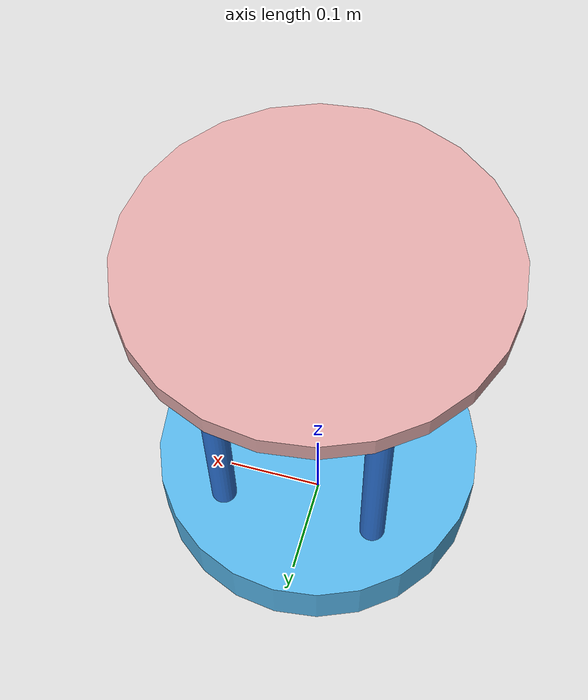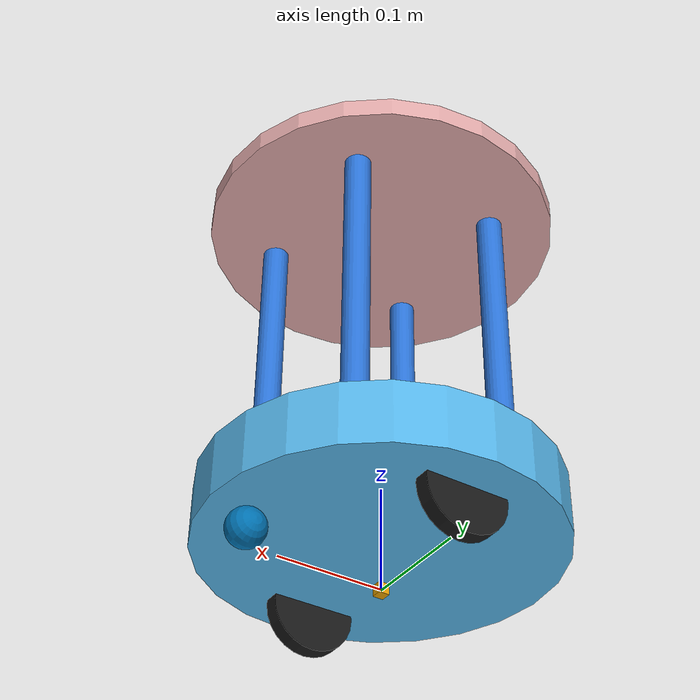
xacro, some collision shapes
<?xml version="1.0" ?>
<robot name="mockbot" xmlns:xacro="http://ros.org/wiki/xacro">
	<xacro:property name="wheel_radius" value="0.04"/>
	<xacro:property name="wheel_separation" value="0.235" />
	<xacro:include filename="mock_sim_base.urdf.xacro" />
	<xacro:create_base wheel_separation="${wheel_separation}" wheel_radius="${wheel_radius}" >
		<mesh filename="package://mock_description/meshes/create_2.dae" />
	</xacro:create_base>
</robot>

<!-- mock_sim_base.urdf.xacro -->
<robot xmlns:xacro="http://ros.org/wiki/xacro">
  <xacro:include filename="common_macros.urdf.xacro" />

  <xacro:property name="body_z_offset"           value="${-2.5*cm2m}" />
  <xacro:property name="body_collision_z_offset" value="${1*cm2m}" />
  <xacro:property name="body_mass"               value="2.300" />
  <xacro:property name="body_radius"             value="${16.4*cm2m}" />
  <xacro:property name="body_length"             value="${6*cm2m}" />
  <xacro:property name="body_cog_x_offset"       value="${2.28*cm2m}" />
  <xacro:property name="base_link_z_offset"      value="${6.42*cm2m}"/>
  <xacro:property name="wheel_mass"              value="0.2" />

  <xacro:macro name="create_wheel" params="prefix y_offset wheel_radius wheel_width">
    <link name="${prefix}_wheel_link">

    <visual>
      <origin xyz="0 0 0" rpy="0 ${pi/2} ${pi/2}" />
      <geometry>
        <cylinder radius="${wheel_radius}" length="${wheel_width}" />
      </geometry>
      <xacro:insert_block name="material_black"/>
    </visual>

    <collision>
      <origin xyz="0 0 0" rpy="0 ${pi/2} ${pi/2}" />
      <geometry>
        <cylinder radius="${wheel_radius}" length="${wheel_width}" />
      </geometry>
    </collision>
    <xacro:inertial_cylinder mass="${wheel_mass}" radius="${wheel_radius}"
      length="${wheel_width}" />
    </link>

   <joint name="${prefix}_wheel_joint" type="continuous">
      <origin xyz="0 ${y_offset} 0.015" rpy="0 0 0" />
      <parent link="base_link" />
      <child link="${prefix}_wheel_link" />
      <axis xyz="0 1 0" />
    </joint>
  </xacro:macro>

  <xacro:macro name="create_base" params="wheel_separation wheel_radius:=0.036 wheel_width:=0.015 wheel_torque:=1.0 wheel_accel:=1.8 *mesh">

   <link name="base_footprint">
      <inertial>
        <mass value="1.0"/>
        <origin xyz="0 0 0" rpy="0 0 0"/>
        <inertia ixx="0.1" ixy="0.0" ixz="0.0" iyy="0.1" iyz="0.0" izz="0.1"/>
      </inertial>

    <visual>
      <origin xyz="0 0 0" rpy="0 0 0" />
      <geometry>
        <box size="0.01 0.01 0.01" />
      </geometry>
    </visual>

    <collision>
      <origin xyz="0 0 0.017" rpy="0 0 0" />
      <geometry>
        <box size="0.001 0.001 0.001" />
      </geometry>
    </collision>
   </link>

   <link name="base_link">
      <inertial>
        <mass value="2.061" />
	<origin xyz="0.003 -0.0005 0.0004" rpy="0 0 0" />
	<inertia ixx="0.05" ixy="0" ixz="0" iyy="0.05" iyz="0" izz="0.08" />
      </inertial>

    <visual>
      <origin xyz="0 0 ${body_z_offset + base_link_z_offset}" rpy="0 0 ${pi/2}"/>
      <geometry>
        <xacro:insert_block name="mesh" />
      </geometry>
    </visual>

    <collision name="create2_base_collision">
      <origin xyz="0 0 ${body_z_offset + body_collision_z_offset  + base_link_z_offset}" rpy="0 0 ${pi/2}"/>
      <geometry>
        <cylinder length="${body_length}" radius="${body_radius}"/>
      </geometry>
    </collision>
    <xacro:inertial_cylinder_with_pose mass="${body_mass}" radius="${body_radius}" length="${body_length}">
      <origin xyz="${body_cog_x_offset} 0 ${body_collision_z_offset + base_link_z_offset}"/>
    </xacro:inertial_cylinder_with_pose>
    </link>

    <joint name="base_footprint_joint" type="fixed">
      <origin xyz="0 0 0.017" rpy="0 0 0" />
      <parent link="base_footprint" />
      <child link="base_link" />
    </joint>

    <xacro:create_wheel prefix="left" y_offset="${wheel_separation / 2}" wheel_radius="${wheel_radius}" wheel_width="${wheel_width}"/>
    <xacro:create_wheel prefix="right" y_offset="${wheel_separation / -2}" wheel_radius="${wheel_radius}" wheel_width="${wheel_width}"/>

    <link name="front_wheel_link">
    <inertial>
      <origin xyz="0 0 0" />
      <mass value="0.01" />
      <inertia ixx="0.001" ixy="0.0" ixz="0.0" iyy="0.001" iyz="0.0" izz="0.001" />
    </inertial>

    <visual>
      <origin xyz="0 0 0" rpy="0 ${pi/2} ${pi/2}" />
      <geometry>
        <sphere radius="0.018" />
      </geometry>
    </visual>

    <collision>
      <origin xyz="0 0 0" rpy="0 ${pi/2} ${pi/2}" />
      <geometry>
        <sphere radius="0.018" />
      </geometry>
    </collision>
    </link>

    <!-- fixed because there's no transmission -->
    <joint name="front_castor_joint" type="fixed">
      <origin xyz="0.13 0 0.0" rpy="0 0 0" />
      <parent link="base_link" />
      <child link="front_wheel_link" />
      <axis xyz="0 1 0" />
    </joint>

    <xacro:include filename="tabletop.urdf.xacro" />
    <xacro:include filename="mock_gazebo.urdf.xacro" />

    <!-- table top and legs-->
    <xacro:tabletop z_offset="0.08" />

    <!-- Simulation sensors -->
    <xacro:sim_create_base wheel_separation="${wheel_separation}" wheel_radius="${wheel_radius}"/>
    <xacro:sim_imu/>
  </xacro:macro>
</robot>

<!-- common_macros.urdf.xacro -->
<!-- Various useful macros -->
<robot name="xacro_properties" xmlns:xacro="http://ros.org/wiki/xacro">

  <xacro:macro name="inertial_cuboid_with_pose" params="mass x y z *origin">
    <inertial>
      <mass value="${mass}" />
      <xacro:insert_block name="origin"/>
      <inertia ixx="${(1/12) * mass * (y*y + z*z)}" ixy="0.0" ixz="0.0"
        iyy="${(1/12) * mass * (x*x + z*z)}" iyz="0.0"
        izz="${(1/12) * mass * (x*x + y*y)}" />
    </inertial>
  </xacro:macro>

  <xacro:macro name="inertial_cuboid" params="mass x y z">
    <xacro:inertial_cuboid_with_pose mass="${mass}" x="${x}" y="${y}" z="${z}">
      <origin xyz="0 0 0" />
    </xacro:inertial_cuboid_with_pose>
  </xacro:macro>

  <xacro:macro name="inertial_cylinder_with_pose" params="mass radius length *origin">
    <inertial>
      <xacro:insert_block name="origin"/>
      <mass value="${mass}" />
      <inertia ixx="${(1/12) * mass * (3*radius*radius + length*length)}" ixy="0.0" ixz="0.0"
        iyy="${(1/12) * mass * (3*radius*radius + length*length)}" iyz="0.0"
        izz="${(1/2) * mass * (radius*radius)}" />
    </inertial>
  </xacro:macro>

  <xacro:macro name="inertial_cylinder" params="mass radius length">
    <xacro:inertial_cylinder_with_pose mass="${mass}" radius="${radius}" length="${length}">
      <origin xyz="0 0 0" />
    </xacro:inertial_cylinder_with_pose>
  </xacro:macro>

  <xacro:macro name="inertial_sphere" params="mass radius">
    <inertial>
      <mass value="${mass}" />
      <inertia ixx="${(2/5) * mass * radius * radius}" ixy="0.0" ixz="0.0"
	             iyy="${(2/5) * mass * radius * radius}" iyz="0.0"
	             izz="${(2/5) * mass * radius * radius}" />
    </inertial>
  </xacro:macro>

  <xacro:macro name="inertial_dummy">
    <xacro:inertial_cuboid mass="0.01" x="0.01" y="0.01" z="0.01"/>
  </xacro:macro>

  <xacro:macro name="ray_sensor"
    params="sensor_name gazebo update_rate visualize
            h_samples h_res h_min_angle h_max_angle
            v_samples:=1 v_res:=1 v_min_angle:=0 v_max_angle:=0
            r_min r_max r_res *plugin">
      <sensor name="${sensor_name}" type="gpu_lidar">
        <update_rate>${update_rate}</update_rate>
        <visualize>${visualize}</visualize>
        <always_on>true</always_on>
        <lidar>
          <scan>
            <horizontal>
              <samples>${h_samples}</samples>
              <resolution>${h_res}</resolution>
              <min_angle>${h_min_angle}</min_angle>
              <max_angle>${h_max_angle}</max_angle>
            </horizontal>
            <vertical>
              <samples>${v_samples}</samples>
              <resolution>${v_res}</resolution>
              <min_angle>${v_min_angle}</min_angle>
              <max_angle>${v_max_angle}</max_angle>
            </vertical>
          </scan>
          <range>
            <min>${r_min}</min>
            <max>${r_max}</max>
            <resolution>${r_res}</resolution>
          </range>
        </lidar>
      </sensor>
  </xacro:macro>

  <!-- Conversion macros -->
  <xacro:property name="cm2m"    value="${1/100.0}"/>
  <xacro:property name="mm2m"    value="${1/1000.0}"/>
  <xacro:property name="in2m"    value="0.0254"/>
  <xacro:property name="deg2rad" value="${pi/180.0}"/>

  <!-- Material colors -->
  <xacro:property name="material_black">
    <material name="black">
      <color rgba="0.1 0.1 0.1 1"/>
    </material>
  </xacro:property>

  <!-- Material macros -->
  <xacro:macro name="material_black">
    <visual>
      <material>
        <diffuse>0 0 0 1</diffuse>
        <specular>${80/255} ${80/255} ${80/255} 1</specular>
        <emissive>0 0 0 1</emissive>
      </material>
    </visual>
  </xacro:macro>

  <xacro:macro name="material_green">
    <visual>
      <material>
        <diffuse>0 1 0 1</diffuse>
        <specular>0 0 0 1</specular>
        <emissive>0 1 0 1</emissive>
      </material>
    </visual>
  </xacro:macro>

  <xacro:macro name="material_darkgray">
    <visual>
      <material>
        <diffuse>${3/255} ${3/255} ${3/255} 1</diffuse>
        <specular>0 0 0 1</specular>
        <emissive>0 0 0 1</emissive>
      </material>
    </visual>
  </xacro:macro>

</robot>

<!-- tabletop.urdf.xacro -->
<robot name="mockbot" xmlns:xacro="http://ros.org/wiki/xacro">
	<xacro:include filename="common_macros.urdf.xacro" />
	<xacro:property name="top_mass" value="0.2" />
	<xacro:property name="top_radius" value="0.17" />
	<xacro:property name="top_length" value="0.02" />
	<xacro:property name="leg_mass" value="0.05" />
	<xacro:property name="leg_radius" value="0.0125" />
	<xacro:property name="leg_length" value="0.3" />
	<xacro:property name="leg_x_off" value="0.077" />
	<xacro:property name="leg_y_off" value="0.077" />
	<xacro:property name="leg_z_off" value="0.175" />

  <xacro:macro name="tabletop" params="z_offset:=0" >
    <link name="top_link">
      <visual>
	<origin xyz="0 0 0" rpy="0 0 0"/>
        <geometry>
		<cylinder length="${top_length}" radius="${top_radius}"/>
        </geometry>
        <material name="yellow">
          <color rgba="0.8784 0.6627 0.6627 1.0"/>
        </material>
      </visual>

      <collision>
        <origin xyz="0 0 0" rpy="0 0 0"/>
        <geometry>
	   <cylinder length="${top_length}" radius="${top_radius}"/>
        </geometry>
      </collision>
      <xacro:inertial_cylinder_with_pose mass="${top_mass}" radius="${top_radius}" length="${top_length}" >
	      <origin xyz="0 0 0" rpy="0 0 0"/>
      </xacro:inertial_cylinder_with_pose>
    </link>

    <joint name="top_to_base" type="fixed">
      <parent link="base_link"/>
      <child link="top_link"/>
      <origin xyz="0 0 ${(top_length / 2) + leg_length + z_offset}" rpy="0 0 0"/>
    </joint>

  <link name="left_front_leg_link">
    <visual>
        <origin xyz="-${leg_x_off} ${leg_y_off} -${leg_length/2}" rpy="0 0 0"/>
        <geometry>
		<cylinder radius="${leg_radius}" length="${leg_length}"/>
        </geometry>
       <material name="blue">
            <color rgba="0.1764 0.4588 0.8509 1.0"/>
       </material>
    </visual>
    <collision>
        <origin xyz="-${leg_x_off} ${leg_y_off} -${leg_length/2}" rpy="0 0 0"/>
        <geometry>
		<cylinder radius="${leg_radius}" length="${leg_length}"/>
        </geometry>
    </collision>
    <xacro:inertial_cylinder_with_pose mass="${leg_mass}" radius="${leg_radius}" length="${leg_length}">
	    <origin xyz="-${leg_x_off} ${leg_y_off} -${leg_length/2}" rpy="0 0 0"/>
    </xacro:inertial_cylinder_with_pose>
  </link>

    <joint name="left_front_leg_joint" type="fixed">
      <axis xyz="0 0 1" />
      <parent link="top_link"/>
      <child link="left_front_leg_link"/>
      <origin xyz="0.0 0.0 ${-(top_length / 2)}" rpy="0 0 0"/>
  </joint>

  <link name="right_front_leg_link">
    <visual>
	<origin xyz="${leg_x_off} -${leg_y_off} -${leg_length/2}" rpy="0 0 0"/>
        <geometry>
		<cylinder radius="${leg_radius}" length="${leg_length}"/>
        </geometry>
       <material name="blue">
            <color rgba="0.1764 0.4588 0.8509 1.0"/>
       </material>
    </visual>
    <collision>
	<origin xyz="${leg_x_off} -${leg_y_off} -${leg_length/2}" rpy="0 0 0"/>
        <geometry>
		<cylinder radius="${leg_radius}" length="${leg_length}"/>
        </geometry>
    </collision>
    <xacro:inertial_cylinder_with_pose mass="${leg_mass}" radius="${leg_radius}" length="${leg_length}">
	<origin xyz="${leg_x_off} -${leg_y_off} -${leg_length/2}" rpy="0 0 0"/>
    </xacro:inertial_cylinder_with_pose>
  </link>

    <joint name="right_front_leg_joint" type="fixed">
      <axis xyz="0 0 1" />
      <parent link="top_link"/>
      <child link="right_front_leg_link"/>
      <origin xyz="0.0 0.0 ${-(top_length / 2)}" rpy="0 0 0"/>
  </joint>

  <link name="left_rear_leg_link">
    <visual>
	<origin xyz="-${leg_x_off} -${leg_y_off} -${leg_length/2}" rpy="0 0 0"/>
        <geometry>
		<cylinder radius="${leg_radius}" length="${leg_length}"/>
        </geometry>
       <material name="blue">
            <color rgba="0.1764 0.4588 0.8509 1.0"/>
       </material>
    </visual>
    <collision>
	<origin xyz="-${leg_x_off} -${leg_y_off} -${leg_length/2}" rpy="0 0 0"/>
        <geometry>
		<cylinder radius="${leg_radius}" length="${leg_length}"/>
        </geometry>
    </collision>
    <xacro:inertial_cylinder_with_pose mass="${leg_mass}" radius="${leg_radius}" length="${leg_length}">
	<origin xyz="-${leg_x_off} -${leg_y_off} -${leg_length/2}" rpy="0 0 0"/>
    </xacro:inertial_cylinder_with_pose>
  </link>

    <joint name="left_rear_leg_joint" type="fixed">
      <axis xyz="0 0 1" />
      <parent link="top_link"/>
      <child link="left_rear_leg_link"/>
      <origin xyz="0.0 0.0 ${-(top_length / 2)}" rpy="0 0 0"/>
  </joint>

  <link name="right_rear_leg_link">
    <visual>
	<origin xyz="${leg_x_off} ${leg_y_off} -${leg_length/2}" rpy="0 0 0"/>
        <geometry>
		<cylinder radius="${leg_radius}" length="${leg_length}"/>
        </geometry>
       <material name="blue">
            <color rgba="0.1764 0.4588 0.8509 1.0"/>
       </material>
    </visual>
    <collision>
	<origin xyz="${leg_x_off} ${leg_y_off} -${leg_length/2}" rpy="0 0 0"/>
        <geometry>
		<cylinder radius="${leg_radius}" length="${leg_length}"/>
        </geometry>
    </collision>
    <xacro:inertial_cylinder_with_pose mass="${leg_mass}" radius="${leg_radius}" length="${leg_length}">
	<origin xyz="${leg_x_off} ${leg_y_off} -${leg_length/2}" rpy="0 0 0"/>
    </xacro:inertial_cylinder_with_pose>
  </link>

    <joint name="right_rear_leg_joint" type="fixed">
      <axis xyz="0 0 1" />
      <parent link="top_link"/>
      <child link="right_rear_leg_link"/>
      <origin xyz="0.0 0.0 ${-(top_length / 2)}" rpy="0 0 0"/>
   </joint>

  </xacro:macro>
</robot>
